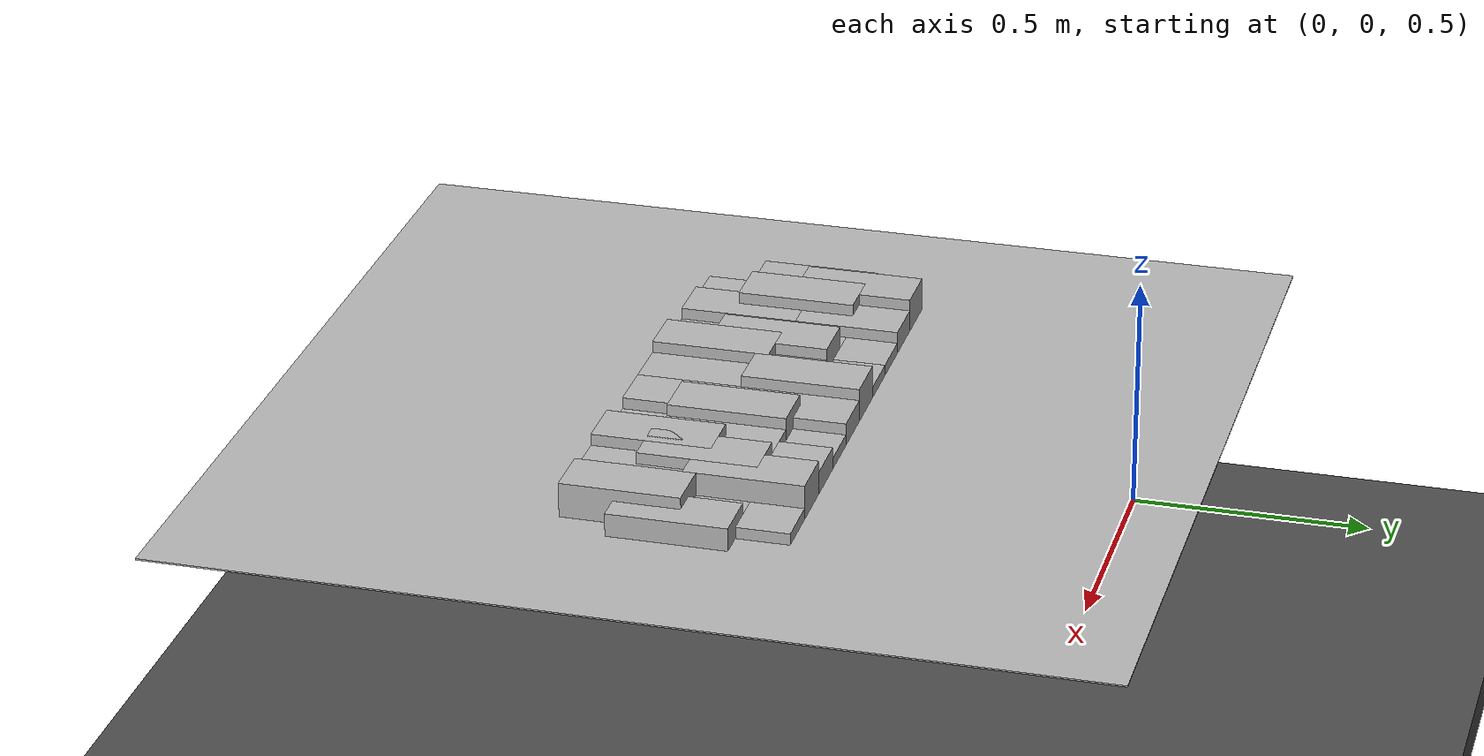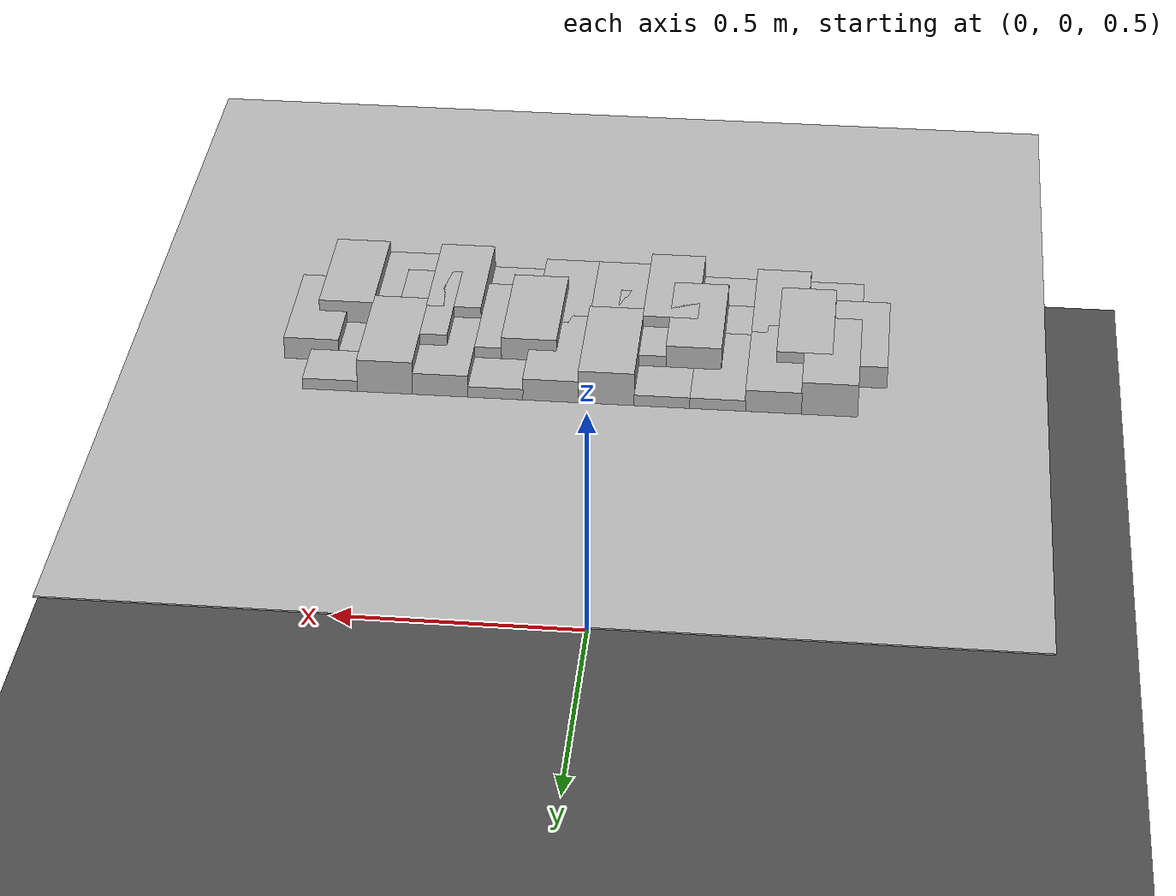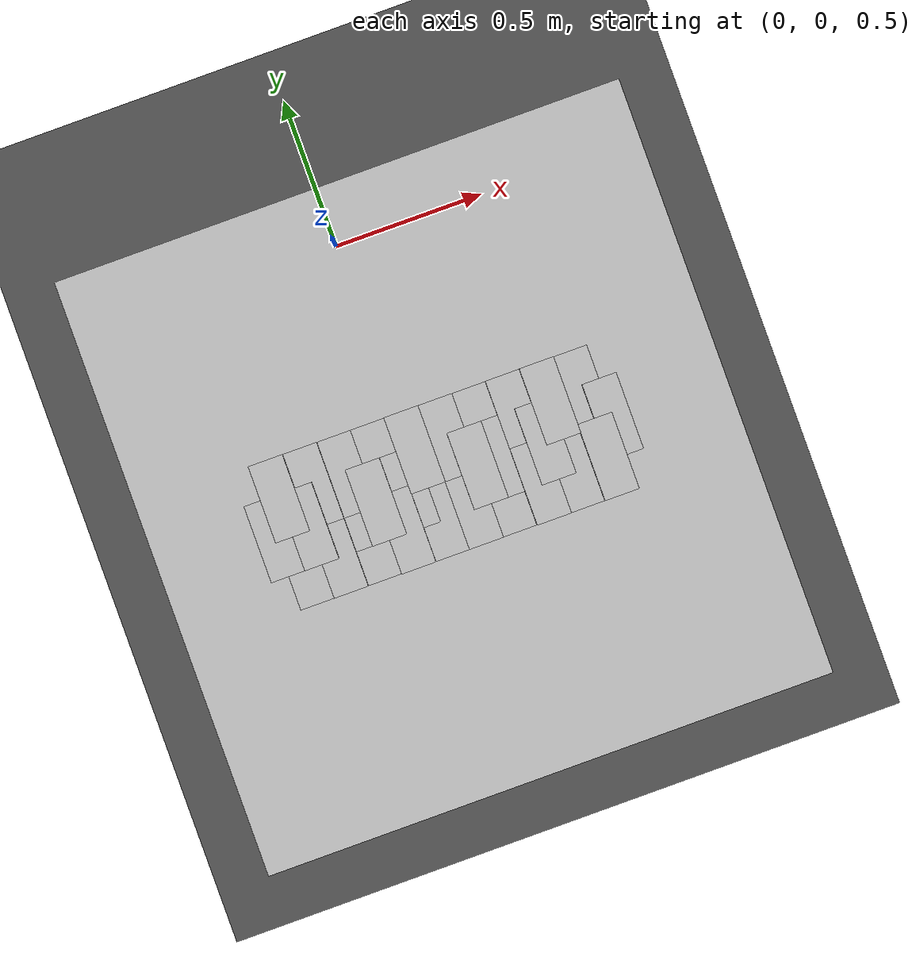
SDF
<sdf version="1.6">
 <world name="default">
  <model name="ground_plane">
   <static>1</static>
   <link name="link">
    <collision name="collision">
     <geometry><plane><normal>0 0 1</normal><size>100 100</size></plane></geometry>
     <surface><friction><ode><mu>100</mu><mu2>50</mu2></ode></friction></surface>
    </collision>
    <visual name="visual">
     <cast_shadows>0</cast_shadows>
     <geometry><plane><normal>0 0 1</normal><size>100 100</size></plane></geometry>
     <material>
      <script><uri>file://media/materials/scripts/gazebo.material</uri><name>Gazebo/Grey</name></script>
     </material>
    </visual>
   </link>
  </model>
  <model name="frc2016_roughterrain_0">
   <link name="link_clone_2">
    <pose>0.174829 -0.848788 -0.073164 0 -0 0</pose>
    <inertial>
     <inertia><ixx>nan</ixx><ixy>0</ixy><ixz>0</ixz><iyy>nan</iyy><iyz>0</iyz><izz>nan</izz></inertia>
     <mass>0</mass>
    </inertial>
    <visual name="row1_block1_sm">
     <pose>0.51435 0.1143 0.09698 0 -0 0</pose>
     <geometry><box><size>0.115452 0.257474 0.0254</size></box></geometry>
     <material><shader type="pixel"/></material>
    </visual>
    <visual name="row1_block4_sm">
     <pose>0.17145 0.1143 0.09698 0 -0 0</pose>
     <geometry><box><size>0.115452 0.257474 0.0254</size></box></geometry>
     <material><shader type="pixel"/></material>
    </visual>
    <visual name="row1_block2_lg">
     <pose>0.40005 0.1143 0.12238 0 -0 0</pose>
     <geometry><box><size>0.115452 0.257474 0.0762</size></box></geometry>
     <material><shader type="pixel"/></material>
    </visual>
    <visual name="row1_block3_md">
     <pose>0.28575 0.1143 0.10968 0 -0 0</pose>
     <geometry><box><size>0.115452 0.257474 0.0508</size></box></geometry>
     <material><shader type="pixel"/></material>
    </visual>
    <visual name="row1_block5_md">
     <pose>0.05715 0.1143 0.10968 0 -0 0</pose>
     <geometry><box><size>0.115452 0.257474 0.0508</size></box></geometry>
     <material><shader type="pixel"/></material>
    </visual>
    <visual name="row1_block6_lg">
     <pose>-0.05715 0.1143 0.12238 0 -0 0</pose>
     <geometry><box><size>0.115452 0.257474 0.0762</size></box></geometry>
     <material><shader type="pixel"/></material>
    </visual>
    <visual name="platform">
     <pose>0 0 0.08269 0 -0 0</pose>
     <geometry><box><size>1.91826 2.01688 0.003175</size></box></geometry>
     <material><shader type="pixel"/></material>
    </visual>
    <visual name="row1_block7_sm">
     <pose>-0.17145 0.1143 0.09698 0 -0 0</pose>
     <geometry><box><size>0.115452 0.257474 0.0254</size></box></geometry>
     <material><shader type="pixel"/></material>
    </visual>
    <visual name="row1_block8_sm">
     <pose>-0.28575 0.1143 0.09698 0 -0 0</pose>
     <geometry><box><size>0.115452 0.257474 0.0254</size></box></geometry>
     <material><shader type="pixel"/></material>
    </visual>
    <visual name="row1_block9_md">
     <pose>-0.40005 0.1143 0.10968 0 -0 0</pose>
     <geometry><box><size>0.115452 0.257474 0.0508</size></box></geometry>
     <material><shader type="pixel"/></material>
    </visual>
    <visual name="row1_block10_lg">
     <pose>-0.51435 0.1143 0.12238 0 -0 0</pose>
     <geometry><box><size>0.115452 0.257474 0.0762</size></box></geometry>
     <material><shader type="pixel"/></material>
    </visual>
    <visual name="row2_block1_md">
     <pose>0.5715 0 0.10968 0 -0 0</pose>
     <geometry><box><size>0.115452 0.257474 0.0508</size></box></geometry>
     <material><shader type="pixel"/></material>
    </visual>
    <visual name="row2_block2_sm">
     <pose>0.4572 0 0.09698 0 -0 0</pose>
     <geometry><box><size>0.115452 0.257474 0.0254</size></box></geometry>
     <material><shader type="pixel"/></material>
    </visual>
    <visual name="row2_block3_lg">
     <pose>0.3429 0 0.12238 0 -0 0</pose>
     <geometry><box><size>0.115452 0.257474 0.0762</size></box></geometry>
     <material><shader type="pixel"/></material>
    </visual>
    <visual name="row2_block4_md">
     <pose>0.2286 0 0.10968 0 -0 0</pose>
     <geometry><box><size>0.115452 0.257474 0.0508</size></box></geometry>
     <material><shader type="pixel"/></material>
    </visual>
    <visual name="row2_block5_lg">
     <pose>0.1143 0 0.12238 0 -0 0</pose>
     <geometry><box><size>0.115452 0.257474 0.0762</size></box></geometry>
     <material><shader type="pixel"/></material>
    </visual>
    <visual name="row2_block6_sm">
     <pose>0 0 0.09698 0 -0 0</pose>
     <geometry><box><size>0.115452 0.257474 0.0254</size></box></geometry>
     <material><shader type="pixel"/></material>
    </visual>
    <visual name="row2_block7_md">
     <pose>-0.1143 0 0.10968 0 -0 0</pose>
     <geometry><box><size>0.115452 0.257474 0.0508</size></box></geometry>
     <material><shader type="pixel"/></material>
    </visual>
    <visual name="row2_block8_lg">
     <pose>-0.2286 0 0.12238 0 -0 0</pose>
     <geometry><box><size>0.115452 0.257474 0.0762</size></box></geometry>
     <material><shader type="pixel"/></material>
    </visual>
    <visual name="row2_block9_sm">
     <pose>-0.3429 0 0.09698 0 -0 0</pose>
     <geometry><box><size>0.115452 0.257474 0.0254</size></box></geometry>
     <material><shader type="pixel"/></material>
    </visual>
    <visual name="row2_block10_lg">
     <pose>-0.4572 0 0.12238 0 -0 0</pose>
     <geometry><box><size>0.115452 0.257474 0.0762</size></box></geometry>
     <material><shader type="pixel"/></material>
    </visual>
    <visual name="row2_block11_md">
     <pose>-0.5715 0 0.10968 0 -0 0</pose>
     <geometry><box><size>0.115452 0.257474 0.0508</size></box></geometry>
     <material><shader type="pixel"/></material>
    </visual>
    <visual name="row3_block2_md">
     <pose>0.40005 -0.1143 0.10968 0 -0 0</pose>
     <geometry><box><size>0.115452 0.257474 0.0508</size></box></geometry>
     <material><shader type="pixel"/></material>
    </visual>
    <visual name="row3_block1_lg">
     <pose>0.51435 -0.1143 0.12238 0 -0 0</pose>
     <geometry><box><size>0.115452 0.257474 0.0762</size></box></geometry>
     <material><shader type="pixel"/></material>
    </visual>
    <visual name="row3_block3_lg">
     <pose>0.28575 -0.1143 0.12238 0 -0 0</pose>
     <geometry><box><size>0.115452 0.257474 0.0762</size></box></geometry>
     <material><shader type="pixel"/></material>
    </visual>
    <visual name="row3_block4_sm">
     <pose>0.17145 -0.1143 0.09698 0 -0 0</pose>
     <geometry><box><size>0.115452 0.257474 0.0254</size></box></geometry>
     <material><shader type="pixel"/></material>
    </visual>
    <visual name="row3_block5_md">
     <pose>0.05715 -0.1143 0.10968 0 -0 0</pose>
     <geometry><box><size>0.115452 0.257474 0.0508</size></box></geometry>
     <material><shader type="pixel"/></material>
    </visual>
    <visual name="row3_block6_md">
     <pose>-0.05715 -0.1143 0.10968 0 -0 0</pose>
     <geometry><box><size>0.115452 0.257474 0.0508</size></box></geometry>
     <material><shader type="pixel"/></material>
    </visual>
    <visual name="row3_block8_sm">
     <pose>-0.28575 -0.1143 0.09698 0 -0 0</pose>
     <geometry><box><size>0.115452 0.257474 0.0254</size></box></geometry>
     <material><shader type="pixel"/></material>
    </visual>
    <visual name="row3_block7_lg">
     <pose>-0.17145 -0.1143 0.12238 0 -0 0</pose>
     <geometry><box><size>0.115452 0.257474 0.0762</size></box></geometry>
     <material><shader type="pixel"/></material>
    </visual>
    <visual name="row3_block9_md">
     <pose>-0.40005 -0.1143 0.10968 0 -0 0</pose>
     <geometry><box><size>0.115452 0.257474 0.0508</size></box></geometry>
     <material><shader type="pixel"/></material>
    </visual>
    <visual name="row3_block10_sm">
     <pose>-0.51435 -0.1143 0.09698 0 -0 0</pose>
     <geometry><box><size>0.115452 0.257474 0.0254</size></box></geometry>
     <material><shader type="pixel"/></material>
    </visual>
    <collision name="row2_block5_lg_0">
     <pose>0.1143 0 0.12238 0 -0 0</pose>
     <geometry><box><size>0.115452 0.257474 0.0762</size></box></geometry>
     <surface>
      <friction>
       <ode><mu>1</mu><mu2>1</mu2><fdir1>0 0 0</fdir1><slip1>0</slip1><slip2>0</slip2></ode>
       <torsional>
        <coefficient>1</coefficient>
        <patch_radius>0</patch_radius>
        <surface_radius>0</surface_radius>
        <use_patch_radius>1</use_patch_radius>
        <ode><slip>0</slip></ode>
       </torsional>
      </friction>
      <bounce><restitution_coefficient>0</restitution_coefficient><threshold>1e+06</threshold></bounce>
      <contact>
       <collide_without_contact>0</collide_without_contact>
       <collide_without_contact_bitmask>1</collide_without_contact_bitmask>
       <collide_bitmask>1</collide_bitmask>
       <ode>
        <soft_cfm>0</soft_cfm>
        <soft_erp>0.2</soft_erp>
        <kp>1e+13</kp>
        <kd>1</kd>
        <max_vel>0.01</max_vel>
        <min_depth>0</min_depth>
       </ode>
       <bullet>
        <split_impulse>1</split_impulse>
        <split_impulse_penetration_threshold>-0.01</split_impulse_penetration_threshold>
        <soft_cfm>0</soft_cfm>
        <soft_erp>0.2</soft_erp>
        <kp>1e+13</kp>
        <kd>1</kd>
       </bullet>
      </contact>
     </surface>
    </collision>
    <collision name="platform_0">
     <pose>0 0 0.08269 0 -0 0</pose>
     <geometry><box><size>1.91826 2.01688 0.003175</size></box></geometry>
     <surface>
      <friction>
       <ode><mu>1</mu><mu2>1</mu2><fdir1>0 0 0</fdir1><slip1>0</slip1><slip2>0</slip2></ode>
       <torsional>
        <coefficient>1</coefficient>
        <patch_radius>0</patch_radius>
        <surface_radius>0</surface_radius>
        <use_patch_radius>1</use_patch_radius>
        <ode><slip>0</slip></ode>
       </torsional>
      </friction>
      <bounce><restitution_coefficient>0</restitution_coefficient><threshold>1e+06</threshold></bounce>
      <contact>
       <collide_without_contact>0</collide_without_contact>
       <collide_without_contact_bitmask>1</collide_without_contact_bitmask>
       <collide_bitmask>1</collide_bitmask>
       <ode>
        <soft_cfm>0</soft_cfm>
        <soft_erp>0.2</soft_erp>
        <kp>1e+13</kp>
        <kd>1</kd>
        <max_vel>0.01</max_vel>
        <min_depth>0</min_depth>
       </ode>
       <bullet>
        <split_impulse>1</split_impulse>
        <split_impulse_penetration_threshold>-0.01</split_impulse_penetration_threshold>
        <soft_cfm>0</soft_cfm>
        <soft_erp>0.2</soft_erp>
        <kp>1e+13</kp>
        <kd>1</kd>
       </bullet>
      </contact>
     </surface>
    </collision>
    <collision name="row1_block3_md_0">
     <pose>0.28575 0.1143 0.10968 0 -0 0</pose>
     <geometry><box><size>0.115452 0.257474 0.0508</size></box></geometry>
     <surface>
      <friction>
       <ode><mu>1</mu><mu2>1</mu2><fdir1>0 0 0</fdir1><slip1>0</slip1><slip2>0</slip2></ode>
       <torsional>
        <coefficient>1</coefficient>
        <patch_radius>0</patch_radius>
        <surface_radius>0</surface_radius>
        <use_patch_radius>1</use_patch_radius>
        <ode><slip>0</slip></ode>
       </torsional>
      </friction>
      <bounce><restitution_coefficient>0</restitution_coefficient><threshold>1e+06</threshold></bounce>
      <contact>
       <collide_without_contact>0</collide_without_contact>
       <collide_without_contact_bitmask>1</collide_without_contact_bitmask>
       <collide_bitmask>1</collide_bitmask>
       <ode>
        <soft_cfm>0</soft_cfm>
        <soft_erp>0.2</soft_erp>
        <kp>1e+13</kp>
        <kd>1</kd>
        <max_vel>0.01</max_vel>
        <min_depth>0</min_depth>
       </ode>
       <bullet>
        <split_impulse>1</split_impulse>
        <split_impulse_penetration_threshold>-0.01</split_impulse_penetration_threshold>
        <soft_cfm>0</soft_cfm>
        <soft_erp>0.2</soft_erp>
        <kp>1e+13</kp>
        <kd>1</kd>
       </bullet>
      </contact>
     </surface>
    </collision>
    <collision name="row1_block1_sm_0">
     <pose>0.51435 0.1143 0.09698 0 -0 0</pose>
     <geometry><box><size>0.115452 0.257474 0.0254</size></box></geometry>
     <surface>
      <friction>
       <ode><mu>1</mu><mu2>1</mu2><fdir1>0 0 0</fdir1><slip1>0</slip1><slip2>0</slip2></ode>
       <torsional>
        <coefficient>1</coefficient>
        <patch_radius>0</patch_radius>
        <surface_radius>0</surface_radius>
        <use_patch_radius>1</use_patch_radius>
        <ode><slip>0</slip></ode>
       </torsional>
      </friction>
      <bounce><restitution_coefficient>0</restitution_coefficient><threshold>1e+06</threshold></bounce>
      <contact>
       <collide_without_contact>0</collide_without_contact>
       <collide_without_contact_bitmask>1</collide_without_contact_bitmask>
       <collide_bitmask>1</collide_bitmask>
       <ode>
        <soft_cfm>0</soft_cfm>
        <soft_erp>0.2</soft_erp>
        <kp>1e+13</kp>
        <kd>1</kd>
        <max_vel>0.01</max_vel>
        <min_depth>0</min_depth>
       </ode>
       <bullet>
        <split_impulse>1</split_impulse>
        <split_impulse_penetration_threshold>-0.01</split_impulse_penetration_threshold>
        <soft_cfm>0</soft_cfm>
        <soft_erp>0.2</soft_erp>
        <kp>1e+13</kp>
        <kd>1</kd>
       </bullet>
      </contact>
     </surface>
    </collision>
    <collision name="row1_block2_lg_0">
     <pose>0.40005 0.1143 0.12238 0 -0 0</pose>
     <geometry><box><size>0.115452 0.257474 0.0762</size></box></geometry>
     <surface>
      <friction>
       <ode><mu>1</mu><mu2>1</mu2><fdir1>0 0 0</fdir1><slip1>0</slip1><slip2>0</slip2></ode>
       <torsional>
        <coefficient>1</coefficient>
        <patch_radius>0</patch_radius>
        <surface_radius>0</surface_radius>
        <use_patch_radius>1</use_patch_radius>
        <ode><slip>0</slip></ode>
       </torsional>
      </friction>
      <bounce><restitution_coefficient>0</restitution_coefficient><threshold>1e+06</threshold></bounce>
      <contact>
       <collide_without_contact>0</collide_without_contact>
       <collide_without_contact_bitmask>1</collide_without_contact_bitmask>
       <collide_bitmask>1</collide_bitmask>
       <ode>
        <soft_cfm>0</soft_cfm>
        <soft_erp>0.2</soft_erp>
        <kp>1e+13</kp>
        <kd>1</kd>
        <max_vel>0.01</max_vel>
        <min_depth>0</min_depth>
       </ode>
       <bullet>
        <split_impulse>1</split_impulse>
        <split_impulse_penetration_threshold>-0.01</split_impulse_penetration_threshold>
        <soft_cfm>0</soft_cfm>
        <soft_erp>0.2</soft_erp>
        <kp>1e+13</kp>
        <kd>1</kd>
       </bullet>
      </contact>
     </surface>
    </collision>
    <collision name="row1_block4_sm_0">
     <pose>0.17145 0.1143 0.09698 0 -0 0</pose>
     <geometry><box><size>0.115452 0.257474 0.0254</size></box></geometry>
     <surface>
      <friction>
       <ode><mu>1</mu><mu2>1</mu2><fdir1>0 0 0</fdir1><slip1>0</slip1><slip2>0</slip2></ode>
       <torsional>
        <coefficient>1</coefficient>
        <patch_radius>0</patch_radius>
        <surface_radius>0</surface_radius>
        <use_patch_radius>1</use_patch_radius>
        <ode><slip>0</slip></ode>
       </torsional>
      </friction>
      <bounce><restitution_coefficient>0</restitution_coefficient><threshold>1e+06</threshold></bounce>
      <contact>
       <collide_without_contact>0</collide_without_contact>
       <collide_without_contact_bitmask>1</collide_without_contact_bitmask>
       <collide_bitmask>1</collide_bitmask>
       <ode>
        <soft_cfm>0</soft_cfm>
        <soft_erp>0.2</soft_erp>
        <kp>1e+13</kp>
        <kd>1</kd>
        <max_vel>0.01</max_vel>
        <min_depth>0</min_depth>
       </ode>
       <bullet>
        <split_impulse>1</split_impulse>
        <split_impulse_penetration_threshold>-0.01</split_impulse_penetration_threshold>
        <soft_cfm>0</soft_cfm>
        <soft_erp>0.2</soft_erp>
        <kp>1e+13</kp>
        <kd>1</kd>
       </bullet>
      </contact>
     </surface>
    </collision>
    <collision name="row1_block5_md_0">
     <pose>0.05715 0.1143 0.10968 0 -0 0</pose>
     <geometry><box><size>0.115452 0.257474 0.0508</size></box></geometry>
     <surface>
      <friction>
       <ode><mu>1</mu><mu2>1</mu2><fdir1>0 0 0</fdir1><slip1>0</slip1><slip2>0</slip2></ode>
       <torsional>
        <coefficient>1</coefficient>
        <patch_radius>0</patch_radius>
        <surface_radius>0</surface_radius>
        <use_patch_radius>1</use_patch_radius>
        <ode><slip>0</slip></ode>
       </torsional>
      </friction>
      <bounce><restitution_coefficient>0</restitution_coefficient><threshold>1e+06</threshold></bounce>
      <contact>
       <collide_without_contact>0</collide_without_contact>
       <collide_without_contact_bitmask>1</collide_without_contact_bitmask>
       <collide_bitmask>1</collide_bitmask>
       <ode>
        <soft_cfm>0</soft_cfm>
        <soft_erp>0.2</soft_erp>
        <kp>1e+13</kp>
        <kd>1</kd>
        <max_vel>0.01</max_vel>
        <min_depth>0</min_depth>
       </ode>
       <bullet>
        <split_impulse>1</split_impulse>
        <split_impulse_penetration_threshold>-0.01</split_impulse_penetration_threshold>
        <soft_cfm>0</soft_cfm>
        <soft_erp>0.2</soft_erp>
        <kp>1e+13</kp>
        <kd>1</kd>
       </bullet>
      </contact>
     </surface>
    </collision>
    <collision name="row1_block6_lg_0">
     <pose>-0.05715 0.1143 0.12238 0 -0 0</pose>
     <geometry><box><size>0.115452 0.257474 0.0762</size></box></geometry>
     <surface>
      <friction>
       <ode><mu>1</mu><mu2>1</mu2><fdir1>0 0 0</fdir1><slip1>0</slip1><slip2>0</slip2></ode>
       <torsional>
        <coefficient>1</coefficient>
        <patch_radius>0</patch_radius>
        <surface_radius>0</surface_radius>
        <use_patch_radius>1</use_patch_radius>
        <ode><slip>0</slip></ode>
       </torsional>
      </friction>
      <bounce><restitution_coefficient>0</restitution_coefficient><threshold>1e+06</threshold></bounce>
      <contact>
       <collide_without_contact>0</collide_without_contact>
       <collide_without_contact_bitmask>1</collide_without_contact_bitmask>
       <collide_bitmask>1</collide_bitmask>
       <ode>
        <soft_cfm>0</soft_cfm>
        <soft_erp>0.2</soft_erp>
        <kp>1e+13</kp>
        <kd>1</kd>
        <max_vel>0.01</max_vel>
        <min_depth>0</min_depth>
       </ode>
       <bullet>
        <split_impulse>1</split_impulse>
        <split_impulse_penetration_threshold>-0.01</split_impulse_penetration_threshold>
        <soft_cfm>0</soft_cfm>
        <soft_erp>0.2</soft_erp>
        <kp>1e+13</kp>
        <kd>1</kd>
       </bullet>
      </contact>
     </surface>
    </collision>
    <collision name="row1_block7_sm_0">
     <pose>-0.17145 0.1143 0.09698 0 -0 0</pose>
     <geometry><box><size>0.115452 0.257474 0.0254</size></box></geometry>
     <surface>
      <friction>
       <ode><mu>1</mu><mu2>1</mu2><fdir1>0 0 0</fdir1><slip1>0</slip1><slip2>0</slip2></ode>
       <torsional>
        <coefficient>1</coefficient>
        <patch_radius>0</patch_radius>
        <surface_radius>0</surface_radius>
        <use_patch_radius>1</use_patch_radius>
        <ode><slip>0</slip></ode>
       </torsional>
      </friction>
      <bounce><restitution_coefficient>0</restitution_coefficient><threshold>1e+06</threshold></bounce>
      <contact>
       <collide_without_contact>0</collide_without_contact>
       <collide_without_contact_bitmask>1</collide_without_contact_bitmask>
       <collide_bitmask>1</collide_bitmask>
       <ode>
        <soft_cfm>0</soft_cfm>
        <soft_erp>0.2</soft_erp>
        <kp>1e+13</kp>
        <kd>1</kd>
        <max_vel>0.01</max_vel>
        <min_depth>0</min_depth>
       </ode>
       <bullet>
        <split_impulse>1</split_impulse>
        <split_impulse_penetration_threshold>-0.01</split_impulse_penetration_threshold>
        <soft_cfm>0</soft_cfm>
        <soft_erp>0.2</soft_erp>
        <kp>1e+13</kp>
        <kd>1</kd>
       </bullet>
      </contact>
     </surface>
    </collision>
    <collision name="row1_block10_lg_0">
     <pose>-0.51435 0.1143 0.12238 0 -0 0</pose>
     <geometry><box><size>0.115452 0.257474 0.0762</size></box></geometry>
     <surface>
      <friction>
       <ode><mu>1</mu><mu2>1</mu2><fdir1>0 0 0</fdir1><slip1>0</slip1><slip2>0</slip2></ode>
       <torsional>
        <coefficient>1</coefficient>
        <patch_radius>0</patch_radius>
        <surface_radius>0</surface_radius>
        <use_patch_radius>1</use_patch_radius>
        <ode><slip>0</slip></ode>
       </torsional>
      </friction>
      <bounce><restitution_coefficient>0</restitution_coefficient><threshold>1e+06</threshold></bounce>
      <contact>
       <collide_without_contact>0</collide_without_contact>
       <collide_without_contact_bitmask>1</collide_without_contact_bitmask>
       <collide_bitmask>1</collide_bitmask>
       <ode>
        <soft_cfm>0</soft_cfm>
        <soft_erp>0.2</soft_erp>
        <kp>1e+13</kp>
        <kd>1</kd>
        <max_vel>0.01</max_vel>
        <min_depth>0</min_depth>
       </ode>
       <bullet>
        <split_impulse>1</split_impulse>
        <split_impulse_penetration_threshold>-0.01</split_impulse_penetration_threshold>
        <soft_cfm>0</soft_cfm>
        <soft_erp>0.2</soft_erp>
        <kp>1e+13</kp>
        <kd>1</kd>
       </bullet>
      </contact>
     </surface>
    </collision>
    <collision name="row1_block8_sm_0">
     <pose>-0.28575 0.1143 0.09698 0 -0 0</pose>
     <geometry><box><size>0.115452 0.257474 0.0254</size></box></geometry>
     <surface>
      <friction>
       <ode><mu>1</mu><mu2>1</mu2><fdir1>0 0 0</fdir1><slip1>0</slip1><slip2>0</slip2></ode>
       <torsional>
        <coefficient>1</coefficient>
        <patch_radius>0</patch_radius>
        <surface_radius>0</surface_radius>
        <use_patch_radius>1</use_patch_radius>
        <ode><slip>0</slip></ode>
       </torsional>
      </friction>
      <bounce><restitution_coefficient>0</restitution_coefficient><threshold>1e+06</threshold></bounce>
      <contact>
       <collide_without_contact>0</collide_without_contact>
       <collide_without_contact_bitmask>1</collide_without_contact_bitmask>
       <collide_bitmask>1</collide_bitmask>
       <ode>
        <soft_cfm>0</soft_cfm>
        <soft_erp>0.2</soft_erp>
        <kp>1e+13</kp>
        <kd>1</kd>
        <max_vel>0.01</max_vel>
        <min_depth>0</min_depth>
       </ode>
       <bullet>
        <split_impulse>1</split_impulse>
        <split_impulse_penetration_threshold>-0.01</split_impulse_penetration_threshold>
        <soft_cfm>0</soft_cfm>
        <soft_erp>0.2</soft_erp>
        <kp>1e+13</kp>
        <kd>1</kd>
       </bullet>
      </contact>
     </surface>
    </collision>
    <collision name="row1_block9_md_0">
     <pose>-0.40005 0.1143 0.10968 0 -0 0</pose>
     <geometry><box><size>0.115452 0.257474 0.0508</size></box></geometry>
     <surface>
      <friction>
       <ode><mu>1</mu><mu2>1</mu2><fdir1>0 0 0</fdir1><slip1>0</slip1><slip2>0</slip2></ode>
       <torsional>
        <coefficient>1</coefficient>
        <patch_radius>0</patch_radius>
        <surface_radius>0</surface_radius>
        <use_patch_radius>1</use_patch_radius>
        <ode><slip>0</slip></ode>
       </torsional>
      </friction>
      <bounce><restitution_coefficient>0</restitution_coefficient><threshold>1e+06</threshold></bounce>
      <contact>
       <collide_without_contact>0</collide_without_contact>
       <collide_without_contact_bitmask>1</collide_without_contact_bitmask>
       <collide_bitmask>1</collide_bitmask>
       <ode>
        <soft_cfm>0</soft_cfm>
        <soft_erp>0.2</soft_erp>
        <kp>1e+13</kp>
        <kd>1</kd>
        <max_vel>0.01</max_vel>
        <min_depth>0</min_depth>
       </ode>
       <bullet>
        <split_impulse>1</split_impulse>
        <split_impulse_penetration_threshold>-0.01</split_impulse_penetration_threshold>
        <soft_cfm>0</soft_cfm>
        <soft_erp>0.2</soft_erp>
        <kp>1e+13</kp>
        <kd>1</kd>
       </bullet>
      </contact>
     </surface>
    </collision>
    <collision name="row2_block1_md_0">
     <pose>0.5715 0 0.10968 0 -0 0</pose>
     <geometry><box><size>0.115452 0.257474 0.0508</size></box></geometry>
     <surface>
      <friction>
       <ode><mu>1</mu><mu2>1</mu2><fdir1>0 0 0</fdir1><slip1>0</slip1><slip2>0</slip2></ode>
       <torsional>
        <coefficient>1</coefficient>
        <patch_radius>0</patch_radius>
        <surface_radius>0</surface_radius>
        <use_patch_radius>1</use_patch_radius>
        <ode><slip>0</slip></ode>
       </torsional>
      </friction>
      <bounce><restitution_coefficient>0</restitution_coefficient><threshold>1e+06</threshold></bounce>
      <contact>
       <collide_without_contact>0</collide_without_contact>
       <collide_without_contact_bitmask>1</collide_without_contact_bitmask>
       <collide_bitmask>1</collide_bitmask>
       <ode>
        <soft_cfm>0</soft_cfm>
        <soft_erp>0.2</soft_erp>
        <kp>1e+13</kp>
        <kd>1</kd>
        <max_vel>0.01</max_vel>
        <min_depth>0</min_depth>
       </ode>
       <bullet>
        <split_impulse>1</split_impulse>
        <split_impulse_penetration_threshold>-0.01</split_impulse_penetration_threshold>
        <soft_cfm>0</soft_cfm>
        <soft_erp>0.2</soft_erp>
        <kp>1e+13</kp>
        <kd>1</kd>
       </bullet>
      </contact>
     </surface>
    </collision>
    <collision name="row2_block2_sm_0">
     <pose>0.4572 0 0.09698 0 -0 0</pose>
     <geometry><box><size>0.115452 0.257474 0.0254</size></box></geometry>
     <surface>
      <friction>
       <ode><mu>1</mu><mu2>1</mu2><fdir1>0 0 0</fdir1><slip1>0</slip1><slip2>0</slip2></ode>
       <torsional>
        <coefficient>1</coefficient>
        <patch_radius>0</patch_radius>
        <surface_radius>0</surface_radius>
        <use_patch_radius>1</use_patch_radius>
        <ode><slip>0</slip></ode>
       </torsional>
      </friction>
      <bounce><restitution_coefficient>0</restitution_coefficient><threshold>1e+06</threshold></bounce>
      <contact>
       <collide_without_contact>0</collide_without_contact>
       <collide_without_contact_bitmask>1</collide_without_contact_bitmask>
       <collide_bitmask>1</collide_bitmask>
       <ode>
        <soft_cfm>0</soft_cfm>
        <soft_erp>0.2</soft_erp>
        <kp>1e+13</kp>
        <kd>1</kd>
        <max_vel>0.01</max_vel>
        <min_depth>0</min_depth>
       </ode>
       <bullet>
        <split_impulse>1</split_impulse>
        <split_impulse_penetration_threshold>-0.01</split_impulse_penetration_threshold>
        <soft_cfm>0</soft_cfm>
        <soft_erp>0.2</soft_erp>
        <kp>1e+13</kp>
        <kd>1</kd>
       </bullet>
      </contact>
     </surface>
    </collision>
    <collision name="row2_block3_lg_0">
     <pose>0.3429 0 0.12238 0 -0 0</pose>
     <geometry><box><size>0.115452 0.257474 0.0762</size></box></geometry>
     <surface>
      <friction>
       <ode><mu>1</mu><mu2>1</mu2><fdir1>0 0 0</fdir1><slip1>0</slip1><slip2>0</slip2></ode>
       <torsional>
        <coefficient>1</coefficient>
        <patch_radius>0</patch_radius>
        <surface_radius>0</surface_radius>
        <use_patch_radius>1</use_patch_radius>
        <ode><slip>0</slip></ode>
       </torsional>
      </friction>
      <bounce><restitution_coefficient>0</restitution_coefficient><threshold>1e+06</threshold></bounce>
      <contact>
       <collide_without_contact>0</collide_without_contact>
       <collide_without_contact_bitmask>1</collide_without_contact_bitmask>
       <collide_bitmask>1</collide_bitmask>
       <ode>
        <soft_cfm>0</soft_cfm>
        <soft_erp>0.2</soft_erp>
        <kp>1e+13</kp>
        <kd>1</kd>
        <max_vel>0.01</max_vel>
        <min_depth>0</min_depth>
       </ode>
       <bullet>
        <split_impulse>1</split_impulse>
        <split_impulse_penetration_threshold>-0.01</split_impulse_penetration_threshold>
        <soft_cfm>0</soft_cfm>
        <soft_erp>0.2</soft_erp>
        <kp>1e+13</kp>
        <kd>1</kd>
       </bullet>
      </contact>
     </surface>
    </collision>
    <collision name="row2_block4_md_0">
     <pose>0.2286 0 0.10968 0 -0 0</pose>
     <geometry><box><size>0.115452 0.257474 0.0508</size></box></geometry>
     <surface>
      <friction>
       <ode><mu>1</mu><mu2>1</mu2><fdir1>0 0 0</fdir1><slip1>0</slip1><slip2>0</slip2></ode>
       <torsional>
        <coefficient>1</coefficient>
        <patch_radius>0</patch_radius>
        <surface_radius>0</surface_radius>
        <use_patch_radius>1</use_patch_radius>
        <ode><slip>0</slip></ode>
       </torsional>
      </friction>
      <bounce><restitution_coefficient>0</restitution_coefficient><threshold>1e+06</threshold></bounce>
      <contact>
       <collide_without_contact>0</collide_without_contact>
       <collide_without_contact_bitmask>1</collide_without_contact_bitmask>
       <collide_bitmask>1</collide_bitmask>
       <ode>
        <soft_cfm>0</soft_cfm>
        <soft_erp>0.2</soft_erp>
        <kp>1e+13</kp>
        <kd>1</kd>
        <max_vel>0.01</max_vel>
        <min_depth>0</min_depth>
       </ode>
       <bullet>
        <split_impulse>1</split_impulse>
        <split_impulse_penetration_threshold>-0.01</split_impulse_penetration_threshold>
        <soft_cfm>0</soft_cfm>
        <soft_erp>0.2</soft_erp>
        <kp>1e+13</kp>
        <kd>1</kd>
       </bullet>
      </contact>
     </surface>
    </collision>
    <collision name="row2_block10_lg_0">
     <pose>-0.4572 0 0.12238 0 -0 0</pose>
     <geometry><box><size>0.115452 0.257474 0.0762</size></box></geometry>
     <surface>
      <friction>
       <ode><mu>1</mu><mu2>1</mu2><fdir1>0 0 0</fdir1><slip1>0</slip1><slip2>0</slip2></ode>
       <torsional>
        <coefficient>1</coefficient>
        <patch_radius>0</patch_radius>
        <surface_radius>0</surface_radius>
        <use_patch_radius>1</use_patch_radius>
        <ode><slip>0</slip></ode>
       </torsional>
      </friction>
      <bounce><restitution_coefficient>0</restitution_coefficient><threshold>1e+06</threshold></bounce>
      <contact>
       <collide_without_contact>0</collide_without_contact>
       <collide_without_contact_bitmask>1</collide_without_contact_bitmask>
       <collide_bitmask>1</collide_bitmask>
       <ode>
        <soft_cfm>0</soft_cfm>
        <soft_erp>0.2</soft_erp>
        <kp>1e+13</kp>
        <kd>1</kd>
        <max_vel>0.01</max_vel>
        <min_depth>0</min_depth>
       </ode>
       <bullet>
        <split_impulse>1</split_impulse>
        <split_impulse_penetration_threshold>-0.01</split_impulse_penetration_threshold>
        <soft_cfm>0</soft_cfm>
        <soft_erp>0.2</soft_erp>
        <kp>1e+13</kp>
        <kd>1</kd>
       </bullet>
      </contact>
     </surface>
    </collision>
    <collision name="row2_block6_sm_0">
     <pose>0 0 0.09698 0 -0 0</pose>
     <geometry><box><size>0.115452 0.257474 0.0254</size></box></geometry>
     <surface>
      <friction>
       <ode><mu>1</mu><mu2>1</mu2><fdir1>0 0 0</fdir1><slip1>0</slip1><slip2>0</slip2></ode>
       <torsional>
        <coefficient>1</coefficient>
        <patch_radius>0</patch_radius>
        <surface_radius>0</surface_radius>
        <use_patch_radius>1</use_patch_radius>
        <ode><slip>0</slip></ode>
       </torsional>
      </friction>
      <bounce><restitution_coefficient>0</restitution_coefficient><threshold>1e+06</threshold></bounce>
      <contact>
       <collide_without_contact>0</collide_without_contact>
       <collide_without_contact_bitmask>1</collide_without_contact_bitmask>
       <collide_bitmask>1</collide_bitmask>
       <ode>
        <soft_cfm>0</soft_cfm>
        <soft_erp>0.2</soft_erp>
        <kp>1e+13</kp>
        <kd>1</kd>
        <max_vel>0.01</max_vel>
        <min_depth>0</min_depth>
       </ode>
       <bullet>
        <split_impulse>1</split_impulse>
        <split_impulse_penetration_threshold>-0.01</split_impulse_penetration_threshold>
        <soft_cfm>0</soft_cfm>
        <soft_erp>0.2</soft_erp>
        <kp>1e+13</kp>
        <kd>1</kd>
       </bullet>
      </contact>
     </surface>
    </collision>
    <collision name="row2_block7_md_0">
     <pose>-0.1143 0 0.10968 0 -0 0</pose>
     <geometry><box><size>0.115452 0.257474 0.0508</size></box></geometry>
     <surface>
      <friction>
       <ode><mu>1</mu><mu2>1</mu2><fdir1>0 0 0</fdir1><slip1>0</slip1><slip2>0</slip2></ode>
       <torsional>
        <coefficient>1</coefficient>
        <patch_radius>0</patch_radius>
        <surface_radius>0</surface_radius>
        <use_patch_radius>1</use_patch_radius>
        <ode><slip>0</slip></ode>
       </torsional>
      </friction>
      <bounce><restitution_coefficient>0</restitution_coefficient><threshold>1e+06</threshold></bounce>
      <contact>
       <collide_without_contact>0</collide_without_contact>
       <collide_without_contact_bitmask>1</collide_without_contact_bitmask>
       <collide_bitmask>1</collide_bitmask>
       <ode>
        <soft_cfm>0</soft_cfm>
        <soft_erp>0.2</soft_erp>
        <kp>1e+13</kp>
        <kd>1</kd>
        <max_vel>0.01</max_vel>
        <min_depth>0</min_depth>
       </ode>
       <bullet>
        <split_impulse>1</split_impulse>
        <split_impulse_penetration_threshold>-0.01</split_impulse_penetration_threshold>
        <soft_cfm>0</soft_cfm>
        <soft_erp>0.2</soft_erp>
        <kp>1e+13</kp>
        <kd>1</kd>
       </bullet>
      </contact>
     </surface>
    </collision>
    <collision name="row2_block9_sm_0">
     <pose>-0.3429 0 0.09698 0 -0 0</pose>
     <geometry><box><size>0.115452 0.257474 0.0254</size></box></geometry>
     <surface>
      <friction>
       <ode><mu>1</mu><mu2>1</mu2><fdir1>0 0 0</fdir1><slip1>0</slip1><slip2>0</slip2></ode>
       <torsional>
        <coefficient>1</coefficient>
        <patch_radius>0</patch_radius>
        <surface_radius>0</surface_radius>
        <use_patch_radius>1</use_patch_radius>
        <ode><slip>0</slip></ode>
       </torsional>
      </friction>
      <bounce><restitution_coefficient>0</restitution_coefficient><threshold>1e+06</threshold></bounce>
      <contact>
       <collide_without_contact>0</collide_without_contact>
       <collide_without_contact_bitmask>1</collide_without_contact_bitmask>
       <collide_bitmask>1</collide_bitmask>
       <ode>
        <soft_cfm>0</soft_cfm>
        <soft_erp>0.2</soft_erp>
        <kp>1e+13</kp>
        <kd>1</kd>
        <max_vel>0.01</max_vel>
        <min_depth>0</min_depth>
       </ode>
       <bullet>
        <split_impulse>1</split_impulse>
        <split_impulse_penetration_threshold>-0.01</split_impulse_penetration_threshold>
        <soft_cfm>0</soft_cfm>
        <soft_erp>0.2</soft_erp>
        <kp>1e+13</kp>
        <kd>1</kd>
       </bullet>
      </contact>
     </surface>
    </collision>
    <collision name="row2_block8_lg_0">
     <pose>-0.2286 0 0.12238 0 -0 0</pose>
     <geometry><box><size>0.115452 0.257474 0.0762</size></box></geometry>
     <surface>
      <friction>
       <ode><mu>1</mu><mu2>1</mu2><fdir1>0 0 0</fdir1><slip1>0</slip1><slip2>0</slip2></ode>
       <torsional>
        <coefficient>1</coefficient>
        <patch_radius>0</patch_radius>
        <surface_radius>0</surface_radius>
        <use_patch_radius>1</use_patch_radius>
        <ode><slip>0</slip></ode>
       </torsional>
      </friction>
      <bounce><restitution_coefficient>0</restitution_coefficient><threshold>1e+06</threshold></bounce>
      <contact>
       <collide_without_contact>0</collide_without_contact>
       <collide_without_contact_bitmask>1</collide_without_contact_bitmask>
       <collide_bitmask>1</collide_bitmask>
       <ode>
        <soft_cfm>0</soft_cfm>
        <soft_erp>0.2</soft_erp>
        <kp>1e+13</kp>
        <kd>1</kd>
        <max_vel>0.01</max_vel>
        <min_depth>0</min_depth>
       </ode>
       <bullet>
        <split_impulse>1</split_impulse>
        <split_impulse_penetration_threshold>-0.01</split_impulse_penetration_threshold>
        <soft_cfm>0</soft_cfm>
        <soft_erp>0.2</soft_erp>
        <kp>1e+13</kp>
        <kd>1</kd>
       </bullet>
      </contact>
     </surface>
    </collision>
    <collision name="row2_block11_md_0">
     <pose>-0.5715 0 0.10968 0 -0 0</pose>
     <geometry><box><size>0.115452 0.257474 0.0508</size></box></geometry>
     <surface>
      <friction>
       <ode><mu>1</mu><mu2>1</mu2><fdir1>0 0 0</fdir1><slip1>0</slip1><slip2>0</slip2></ode>
       <torsional>
        <coefficient>1</coefficient>
        <patch_radius>0</patch_radius>
        <surface_radius>0</surface_radius>
        <use_patch_radius>1</use_patch_radius>
        <ode><slip>0</slip></ode>
       </torsional>
      </friction>
      <bounce><restitution_coefficient>0</restitution_coefficient><threshold>1e+06</threshold></bounce>
      <contact>
       <collide_without_contact>0</collide_without_contact>
       <collide_without_contact_bitmask>1</collide_without_contact_bitmask>
       <collide_bitmask>1</collide_bitmask>
       <ode>
        <soft_cfm>0</soft_cfm>
        <soft_erp>0.2</soft_erp>
        <kp>1e+13</kp>
        <kd>1</kd>
        <max_vel>0.01</max_vel>
        <min_depth>0</min_depth>
       </ode>
       <bullet>
        <split_impulse>1</split_impulse>
        <split_impulse_penetration_threshold>-0.01</split_impulse_penetration_threshold>
        <soft_cfm>0</soft_cfm>
        <soft_erp>0.2</soft_erp>
        <kp>1e+13</kp>
        <kd>1</kd>
       </bullet>
      </contact>
     </surface>
    </collision>
    <collision name="row3_block2_md_0">
     <pose>0.40005 -0.1143 0.10968 0 -0 0</pose>
     <geometry><box><size>0.115452 0.257474 0.0508</size></box></geometry>
     <surface>
      <friction>
       <ode><mu>1</mu><mu2>1</mu2><fdir1>0 0 0</fdir1><slip1>0</slip1><slip2>0</slip2></ode>
       <torsional>
        <coefficient>1</coefficient>
        <patch_radius>0</patch_radius>
        <surface_radius>0</surface_radius>
        <use_patch_radius>1</use_patch_radius>
        <ode><slip>0</slip></ode>
       </torsional>
      </friction>
      <bounce><restitution_coefficient>0</restitution_coefficient><threshold>1e+06</threshold></bounce>
      <contact>
       <collide_without_contact>0</collide_without_contact>
       <collide_without_contact_bitmask>1</collide_without_contact_bitmask>
       <collide_bitmask>1</collide_bitmask>
       <ode>
        <soft_cfm>0</soft_cfm>
        <soft_erp>0.2</soft_erp>
        <kp>1e+13</kp>
        <kd>1</kd>
        <max_vel>0.01</max_vel>
        <min_depth>0</min_depth>
       </ode>
       <bullet>
        <split_impulse>1</split_impulse>
        <split_impulse_penetration_threshold>-0.01</split_impulse_penetration_threshold>
        <soft_cfm>0</soft_cfm>
        <soft_erp>0.2</soft_erp>
        <kp>1e+13</kp>
        <kd>1</kd>
       </bullet>
      </contact>
     </surface>
    </collision>
    <collision name="row3_block1_lg_0">
     <pose>0.51435 -0.1143 0.12238 0 -0 0</pose>
     <geometry><box><size>0.115452 0.257474 0.0762</size></box></geometry>
     <surface>
      <friction>
       <ode><mu>1</mu><mu2>1</mu2><fdir1>0 0 0</fdir1><slip1>0</slip1><slip2>0</slip2></ode>
       <torsional>
        <coefficient>1</coefficient>
        <patch_radius>0</patch_radius>
        <surface_radius>0</surface_radius>
        <use_patch_radius>1</use_patch_radius>
        <ode><slip>0</slip></ode>
       </torsional>
      </friction>
      <bounce><restitution_coefficient>0</restitution_coefficient><threshold>1e+06</threshold></bounce>
      <contact>
       <collide_without_contact>0</collide_without_contact>
       <collide_without_contact_bitmask>1</collide_without_contact_bitmask>
       <collide_bitmask>1</collide_bitmask>
       <ode>
        <soft_cfm>0</soft_cfm>
        <soft_erp>0.2</soft_erp>
        <kp>1e+13</kp>
        <kd>1</kd>
        <max_vel>0.01</max_vel>
        <min_depth>0</min_depth>
       </ode>
       <bullet>
        <split_impulse>1</split_impulse>
        <split_impulse_penetration_threshold>-0.01</split_impulse_penetration_threshold>
        <soft_cfm>0</soft_cfm>
        <soft_erp>0.2</soft_erp>
        <kp>1e+13</kp>
        <kd>1</kd>
       </bullet>
      </contact>
     </surface>
    </collision>
    <collision name="row3_block3_lg_0">
     <pose>0.28575 -0.1143 0.12238 0 -0 0</pose>
     <geometry><box><size>0.115452 0.257474 0.0762</size></box></geometry>
     <surface>
      <friction>
       <ode><mu>1</mu><mu2>1</mu2><fdir1>0 0 0</fdir1><slip1>0</slip1><slip2>0</slip2></ode>
       <torsional>
        <coefficient>1</coefficient>
        <patch_radius>0</patch_radius>
        <surface_radius>0</surface_radius>
        <use_patch_radius>1</use_patch_radius>
        <ode><slip>0</slip></ode>
       </torsional>
      </friction>
      <bounce><restitution_coefficient>0</restitution_coefficient><threshold>1e+06</threshold></bounce>
      <contact>
       <collide_without_contact>0</collide_without_contact>
       <collide_without_contact_bitmask>1</collide_without_contact_bitmask>
       <collide_bitmask>1</collide_bitmask>
       <ode>
        <soft_cfm>0</soft_cfm>
        <soft_erp>0.2</soft_erp>
        <kp>1e+13</kp>
        <kd>1</kd>
        <max_vel>0.01</max_vel>
        <min_depth>0</min_depth>
       </ode>
       <bullet>
        <split_impulse>1</split_impulse>
        <split_impulse_penetration_threshold>-0.01</split_impulse_penetration_threshold>
        <soft_cfm>0</soft_cfm>
        <soft_erp>0.2</soft_erp>
        <kp>1e+13</kp>
        <kd>1</kd>
       </bullet>
      </contact>
     </surface>
    </collision>
    <collision name="row3_block4_sm_0">
     <pose>0.17145 -0.1143 0.09698 0 -0 0</pose>
     <geometry><box><size>0.115452 0.257474 0.0254</size></box></geometry>
     <surface>
      <friction>
       <ode><mu>1</mu><mu2>1</mu2><fdir1>0 0 0</fdir1><slip1>0</slip1><slip2>0</slip2></ode>
       <torsional>
        <coefficient>1</coefficient>
        <patch_radius>0</patch_radius>
        <surface_radius>0</surface_radius>
        <use_patch_radius>1</use_patch_radius>
        <ode><slip>0</slip></ode>
       </torsional>
      </friction>
      <bounce><restitution_coefficient>0</restitution_coefficient><threshold>1e+06</threshold></bounce>
      <contact>
       <collide_without_contact>0</collide_without_contact>
       <collide_without_contact_bitmask>1</collide_without_contact_bitmask>
       <collide_bitmask>1</collide_bitmask>
       <ode>
        <soft_cfm>0</soft_cfm>
        <soft_erp>0.2</soft_erp>
        <kp>1e+13</kp>
        <kd>1</kd>
        <max_vel>0.01</max_vel>
        <min_depth>0</min_depth>
       </ode>
       <bullet>
        <split_impulse>1</split_impulse>
        <split_impulse_penetration_threshold>-0.01</split_impulse_penetration_threshold>
        <soft_cfm>0</soft_cfm>
        <soft_erp>0.2</soft_erp>
        <kp>1e+13</kp>
        <kd>1</kd>
       </bullet>
      </contact>
     </surface>
    </collision>
    <collision name="row3_block5_md_0">
     <pose>0.05715 -0.1143 0.10968 0 -0 0</pose>
     <geometry><box><size>0.115452 0.257474 0.0508</size></box></geometry>
     <surface>
      <friction>
       <ode><mu>1</mu><mu2>1</mu2><fdir1>0 0 0</fdir1><slip1>0</slip1><slip2>0</slip2></ode>
       <torsional>
        <coefficient>1</coefficient>
        <patch_radius>0</patch_radius>
        <surface_radius>0</surface_radius>
        <use_patch_radius>1</use_patch_radius>
        <ode><slip>0</slip></ode>
       </torsional>
      </friction>
      <bounce><restitution_coefficient>0</restitution_coefficient><threshold>1e+06</threshold></bounce>
      <contact>
       <collide_without_contact>0</collide_without_contact>
       <collide_without_contact_bitmask>1</collide_without_contact_bitmask>
       <collide_bitmask>1</collide_bitmask>
       <ode>
        <soft_cfm>0</soft_cfm>
        <soft_erp>0.2</soft_erp>
        <kp>1e+13</kp>
        <kd>1</kd>
        <max_vel>0.01</max_vel>
        <min_depth>0</min_depth>
       </ode>
       <bullet>
        <split_impulse>1</split_impulse>
        <split_impulse_penetration_threshold>-0.01</split_impulse_penetration_threshold>
        <soft_cfm>0</soft_cfm>
        <soft_erp>0.2</soft_erp>
        <kp>1e+13</kp>
        <kd>1</kd>
       </bullet>
      </contact>
     </surface>
    </collision>
    <collision name="row3_block7_lg_0">
     <pose>-0.17145 -0.1143 0.12238 0 -0 0</pose>
     <geometry><box><size>0.115452 0.257474 0.0762</size></box></geometry>
     <surface>
      <friction>
       <ode><mu>1</mu><mu2>1</mu2><fdir1>0 0 0</fdir1><slip1>0</slip1><slip2>0</slip2></ode>
       <torsional>
        <coefficient>1</coefficient>
        <patch_radius>0</patch_radius>
        <surface_radius>0</surface_radius>
        <use_patch_radius>1</use_patch_radius>
        <ode><slip>0</slip></ode>
       </torsional>
      </friction>
      <bounce><restitution_coefficient>0</restitution_coefficient><threshold>1e+06</threshold></bounce>
      <contact>
       <collide_without_contact>0</collide_without_contact>
       <collide_without_contact_bitmask>1</collide_without_contact_bitmask>
       <collide_bitmask>1</collide_bitmask>
       <ode>
        <soft_cfm>0</soft_cfm>
        <soft_erp>0.2</soft_erp>
        <kp>1e+13</kp>
        <kd>1</kd>
        <max_vel>0.01</max_vel>
        <min_depth>0</min_depth>
       </ode>
       <bullet>
        <split_impulse>1</split_impulse>
        <split_impulse_penetration_threshold>-0.01</split_impulse_penetration_threshold>
        <soft_cfm>0</soft_cfm>
        <soft_erp>0.2</soft_erp>
        <kp>1e+13</kp>
        <kd>1</kd>
       </bullet>
      </contact>
     </surface>
    </collision>
    <collision name="row3_block6_md_0">
     <pose>-0.05715 -0.1143 0.10968 0 -0 0</pose>
     <geometry><box><size>0.115452 0.257474 0.0508</size></box></geometry>
     <surface>
      <friction>
       <ode><mu>1</mu><mu2>1</mu2><fdir1>0 0 0</fdir1><slip1>0</slip1><slip2>0</slip2></ode>
       <torsional>
        <coefficient>1</coefficient>
        <patch_radius>0</patch_radius>
        <surface_radius>0</surface_radius>
        <use_patch_radius>1</use_patch_radius>
        <ode><slip>0</slip></ode>
       </torsional>
      </friction>
      <bounce><restitution_coefficient>0</restitution_coefficient><threshold>1e+06</threshold></bounce>
      <contact>
       <collide_without_contact>0</collide_without_contact>
       <collide_without_contact_bitmask>1</collide_without_contact_bitmask>
       <collide_bitmask>1</collide_bitmask>
       <ode>
        <soft_cfm>0</soft_cfm>
        <soft_erp>0.2</soft_erp>
        <kp>1e+13</kp>
        <kd>1</kd>
        <max_vel>0.01</max_vel>
        <min_depth>0</min_depth>
       </ode>
       <bullet>
        <split_impulse>1</split_impulse>
        <split_impulse_penetration_threshold>-0.01</split_impulse_penetration_threshold>
        <soft_cfm>0</soft_cfm>
        <soft_erp>0.2</soft_erp>
        <kp>1e+13</kp>
        <kd>1</kd>
       </bullet>
      </contact>
     </surface>
    </collision>
    <collision name="row3_block8_sm_0">
     <pose>-0.28575 -0.1143 0.09698 0 -0 0</pose>
     <geometry><box><size>0.115452 0.257474 0.0254</size></box></geometry>
     <surface>
      <friction>
       <ode><mu>1</mu><mu2>1</mu2><fdir1>0 0 0</fdir1><slip1>0</slip1><slip2>0</slip2></ode>
       <torsional>
        <coefficient>1</coefficient>
        <patch_radius>0</patch_radius>
        <surface_radius>0</surface_radius>
        <use_patch_radius>1</use_patch_radius>
        <ode><slip>0</slip></ode>
       </torsional>
      </friction>
      <bounce><restitution_coefficient>0</restitution_coefficient><threshold>1e+06</threshold></bounce>
      <contact>
       <collide_without_contact>0</collide_without_contact>
       <collide_without_contact_bitmask>1</collide_without_contact_bitmask>
       <collide_bitmask>1</collide_bitmask>
       <ode>
        <soft_cfm>0</soft_cfm>
        <soft_erp>0.2</soft_erp>
        <kp>1e+13</kp>
        <kd>1</kd>
        <max_vel>0.01</max_vel>
        <min_depth>0</min_depth>
       </ode>
       <bullet>
        <split_impulse>1</split_impulse>
        <split_impulse_penetration_threshold>-0.01</split_impulse_penetration_threshold>
        <soft_cfm>0</soft_cfm>
        <soft_erp>0.2</soft_erp>
        <kp>1e+13</kp>
        <kd>1</kd>
       </bullet>
      </contact>
     </surface>
    </collision>
    <collision name="row3_block10_sm_0">
     <pose>-0.51435 -0.1143 0.09698 0 -0 0</pose>
     <geometry><box><size>0.115452 0.257474 0.0254</size></box></geometry>
     <surface>
      <friction>
       <ode><mu>1</mu><mu2>1</mu2><fdir1>0 0 0</fdir1><slip1>0</slip1><slip2>0</slip2></ode>
       <torsional>
        <coefficient>1</coefficient>
        <patch_radius>0</patch_radius>
        <surface_radius>0</surface_radius>
        <use_patch_radius>1</use_patch_radius>
        <ode><slip>0</slip></ode>
       </torsional>
      </friction>
      <bounce><restitution_coefficient>0</restitution_coefficient><threshold>1e+06</threshold></bounce>
      <contact>
       <collide_without_contact>0</collide_without_contact>
       <collide_without_contact_bitmask>1</collide_without_contact_bitmask>
       <collide_bitmask>1</collide_bitmask>
       <ode>
        <soft_cfm>0</soft_cfm>
        <soft_erp>0.2</soft_erp>
        <kp>1e+13</kp>
        <kd>1</kd>
        <max_vel>0.01</max_vel>
        <min_depth>0</min_depth>
       </ode>
       <bullet>
        <split_impulse>1</split_impulse>
        <split_impulse_penetration_threshold>-0.01</split_impulse_penetration_threshold>
        <soft_cfm>0</soft_cfm>
        <soft_erp>0.2</soft_erp>
        <kp>1e+13</kp>
        <kd>1</kd>
       </bullet>
      </contact>
     </surface>
    </collision>
    <collision name="row3_block9_md_0">
     <pose>-0.40005 -0.1143 0.10968 0 -0 0</pose>
     <geometry><box><size>0.115452 0.257474 0.0508</size></box></geometry>
     <surface>
      <friction>
       <ode><mu>1</mu><mu2>1</mu2><fdir1>0 0 0</fdir1><slip1>0</slip1><slip2>0</slip2></ode>
       <torsional>
        <coefficient>1</coefficient>
        <patch_radius>0</patch_radius>
        <surface_radius>0</surface_radius>
        <use_patch_radius>1</use_patch_radius>
        <ode><slip>0</slip></ode>
       </torsional>
      </friction>
      <bounce><restitution_coefficient>0</restitution_coefficient><threshold>1e+06</threshold></bounce>
      <contact>
       <collide_without_contact>0</collide_without_contact>
       <collide_without_contact_bitmask>1</collide_without_contact_bitmask>
       <collide_bitmask>1</collide_bitmask>
       <ode>
        <soft_cfm>0</soft_cfm>
        <soft_erp>0.2</soft_erp>
        <kp>1e+13</kp>
        <kd>1</kd>
        <max_vel>0.01</max_vel>
        <min_depth>0</min_depth>
       </ode>
       <bullet>
        <split_impulse>1</split_impulse>
        <split_impulse_penetration_threshold>-0.01</split_impulse_penetration_threshold>
        <soft_cfm>0</soft_cfm>
        <soft_erp>0.2</soft_erp>
        <kp>1e+13</kp>
        <kd>1</kd>
       </bullet>
      </contact>
     </surface>
    </collision>
   </link>
   <static>1</static>
   <pose>-0.10114 0.027351 0.636987 0 -0 0</pose>
  </model>
  <model name="asphalt_plane">
   <static>1</static>
   <link name="link">
    <collision name="collision"><geometry><box><size>20 20 0.1</size></box></geometry></collision>
    <visual name="visual">
     <cast_shadows>0</cast_shadows>
     <geometry><box><size>20 20 0.1</size></box></geometry>
     <material>
      <script>
       <uri>model://asphalt_plane/materials/scripts</uri>
       <uri>model://asphalt_plane/materials/textures</uri>
       <name>vrc/asphalt</name>
      </script>
     </material>
    </visual>
   </link>
   <pose>0.537328 0.29075 -0.013118 0 -0 0</pose>
  </model>
 </world>
</sdf>
